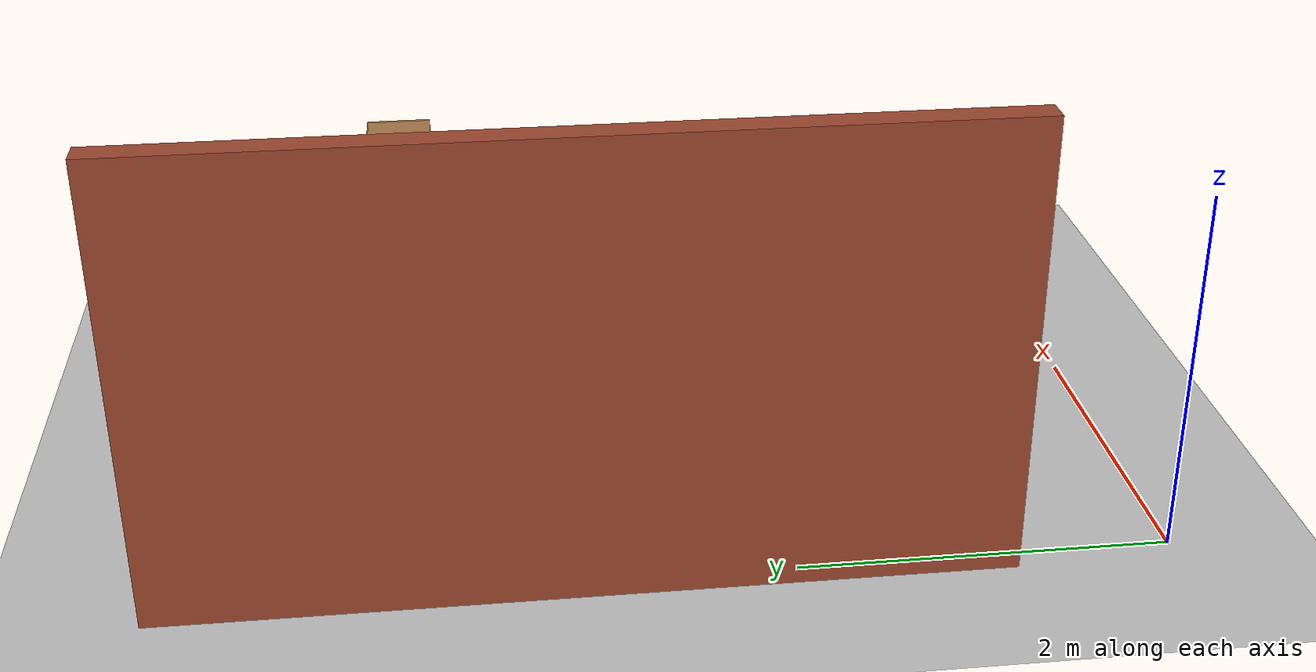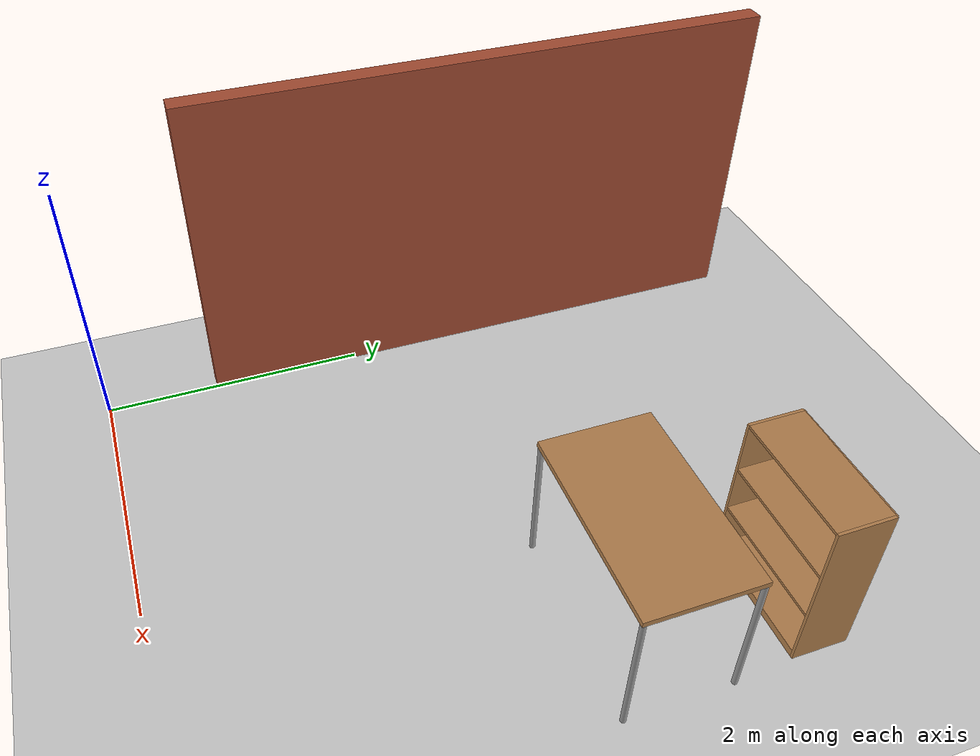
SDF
<sdf version="1.4">
 <world name="default">
  <include><uri>model://sun</uri></include>
  <include><uri>model://ground_plane</uri></include>
  <physics type="ode">
   <real_time_update_rate>1000.0</real_time_update_rate>
   <max_step_size>0.001</max_step_size>
   <real_time_factor>1</real_time_factor>
   <ode>
    <solver>
     <type>quick</type>
     <iters>150</iters>
     <precon_iters>0</precon_iters>
     <sor>1.400000</sor>
     <use_dynamic_moi_rescaling>1</use_dynamic_moi_rescaling>
    </solver>
    <constraints>
     <cfm>0.00001</cfm>
     <erp>0.2</erp>
     <contact_max_correcting_vel>2000.000000</contact_max_correcting_vel>
     <contact_surface_layer>0.01000</contact_surface_layer>
    </constraints>
   </ode>
  </physics>
  <include><uri>model://tinyroom</uri></include>
  <scene><ambient>0.4 0.4 0.4 1</ambient><background>0.7 0.7 0.7 1</background><shadows>true</shadows></scene>
 </world>
</sdf>

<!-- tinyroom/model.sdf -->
<sdf version="1.6">
  <model name="tinyroom">
    <link name="Wall_101">
      <pose frame="">-0.05 3.1 0 0 0 -1.5708</pose>
      <self_collide>0</self_collide>
      <kinematic>0</kinematic>
      <visual name="Wall_101_Visual">
        <pose frame="">0 0 1.25 0 -0 0</pose>
        <geometry>
          <box>
            <size>4.5 0.15 2.5</size>
          </box>
        </geometry>
        <material>
          <script>
            <uri>file://media/materials/scripts/gazebo.material</uri>
            <name>Gazebo/Bricks</name>
          </script>
          <ambient>1 1 1 1</ambient>
          <diffuse>1 1 1 1</diffuse>
          <specular>0.2 0.2 0.2 1</specular>
          <emissive>0 0 0 1</emissive>
        </material>
        <cast_shadows>1</cast_shadows>
        <transparency>0</transparency>
      </visual>
      <collision name="Wall_101_Collision">
        <laser_retro>0</laser_retro>
        <max_contacts>10</max_contacts>
        <pose frame="">0 0 1.25 0 -0 0</pose>
        <geometry>
          <box>
            <size>4.5 0.15 2.5</size>
          </box>
        </geometry>
        <surface>
          <friction>
            <ode>
              <mu>1</mu>
              <mu2>1</mu2>
              <fdir1>0 0 0</fdir1>
              <slip1>0</slip1>
              <slip2>0</slip2>
            </ode>
            <torsional>
              <coefficient>1</coefficient>
              <patch_radius>0</patch_radius>
              <surface_radius>0</surface_radius>
              <use_patch_radius>1</use_patch_radius>
              <ode>
                <slip>0</slip>
              </ode>
            </torsional>
          </friction>
          <bounce>
            <restitution_coefficient>0</restitution_coefficient>
            <threshold>1e+06</threshold>
          </bounce>
          <contact>
            <collide_without_contact>0</collide_without_contact>
            <collide_without_contact_bitmask>1</collide_without_contact_bitmask>
            <collide_bitmask>1</collide_bitmask>
            <ode>
              <soft_cfm>0</soft_cfm>
              <soft_erp>0.2</soft_erp>
              <kp>1e+13</kp>
              <kd>1</kd>
              <max_vel>0.01</max_vel>
              <min_depth>0</min_depth>
            </ode>
            <bullet>
              <split_impulse>1</split_impulse>
              <split_impulse_penetration_threshold>-0.01</split_impulse_penetration_threshold>
              <soft_cfm>0</soft_cfm>
              <soft_erp>0.2</soft_erp>
              <kp>1e+13</kp>
              <kd>1</kd>
            </bullet>
          </contact>
        </surface>
      </collision>
    </link>
    <model name="bookshelf">
      <static>1</static>
      <link name="link">
        <inertial>
          <mass>1</mass>
        </inertial>
        <collision name="back">
          <pose frame="">0 0.005 0.6 0 -0 0</pose>
          <geometry>
            <box>
              <size>0.9 0.01 1.2</size>
            </box>
          </geometry>
        </collision>
        <visual name="visual1">
          <pose frame="">0 0.005 0.6 0 -0 0</pose>
          <geometry>
            <box>
              <size>0.9 0.01 1.2</size>
            </box>
          </geometry>
          <material>
            <script>
              <uri>file://media/materials/scripts/gazebo.material</uri>
              <name>Gazebo/Wood</name>
            </script>
          </material>
        </visual>
        <collision name="left_side">
          <pose frame="">0.45 -0.195 0.6 0 -0 0</pose>
          <geometry>
            <box>
              <size>0.02 0.4 1.2</size>
            </box>
          </geometry>
        </collision>
        <visual name="visual2">
          <pose frame="">0.45 -0.195 0.6 0 -0 0</pose>
          <geometry>
            <box>
              <size>0.02 0.4 1.2</size>
            </box>
          </geometry>
          <material>
            <script>
              <uri>file://media/materials/scripts/gazebo.material</uri>
              <name>Gazebo/Wood</name>
            </script>
          </material>
        </visual>
        <collision name="right_side">
          <pose frame="">-0.45 -0.195 0.6 0 -0 0</pose>
          <geometry>
            <box>
              <size>0.02 0.4 1.2</size>
            </box>
          </geometry>
        </collision>
        <visual name="visual3">
          <pose frame="">-0.45 -0.195 0.6 0 -0 0</pose>
          <geometry>
            <box>
              <size>0.02 0.4 1.2</size>
            </box>
          </geometry>
          <material>
            <script>
              <uri>file://media/materials/scripts/gazebo.material</uri>
              <name>Gazebo/Wood</name>
            </script>
          </material>
        </visual>
        <collision name="bottom">
          <pose frame="">0 -0.195 0.03 0 -0 0</pose>
          <geometry>
            <box>
              <size>0.88 0.4 0.06</size>
            </box>
          </geometry>
        </collision>
        <visual name="visual4">
          <pose frame="">0 -0.195 0.03 0 -0 0</pose>
          <geometry>
            <box>
              <size>0.88 0.4 0.06</size>
            </box>
          </geometry>
          <material>
            <script>
              <uri>file://media/materials/scripts/gazebo.material</uri>
              <name>Gazebo/Wood</name>
            </script>
          </material>
        </visual>
        <collision name="top">
          <pose frame="">0 -0.195 1.19 0 -0 0</pose>
          <geometry>
            <box>
              <size>0.88 0.4 0.02</size>
            </box>
          </geometry>
        </collision>
        <visual name="visual5">
          <pose frame="">0 -0.195 1.19 0 -0 0</pose>
          <geometry>
            <box>
              <size>0.88 0.4 0.02</size>
            </box>
          </geometry>
          <material>
            <script>
              <uri>file://media/materials/scripts/gazebo.material</uri>
              <name>Gazebo/Wood</name>
            </script>
          </material>
        </visual>
        <collision name="low_shelf">
          <pose frame="">0 -0.195 0.43 0 -0 0</pose>
          <geometry>
            <box>
              <size>0.88 0.4 0.02</size>
            </box>
          </geometry>
        </collision>
        <visual name="visual6">
          <pose frame="">0 -0.195 0.43 0 -0 0</pose>
          <geometry>
            <box>
              <size>0.88 0.4 0.02</size>
            </box>
          </geometry>
          <material>
            <script>
              <uri>file://media/materials/scripts/gazebo.material</uri>
              <name>Gazebo/Wood</name>
            </script>
          </material>
        </visual>
        <collision name="high_shelf">
          <pose frame="">0 -0.195 0.8 0 -0 0</pose>
          <geometry>
            <box>
              <size>0.88 0.4 0.02</size>
            </box>
          </geometry>
        </collision>
        <visual name="visual7">
          <pose frame="">0 -0.195 0.8 0 -0 0</pose>
          <geometry>
            <box>
              <size>0.88 0.4 0.02</size>
            </box>
          </geometry>
          <material>
            <script>
              <uri>file://media/materials/scripts/gazebo.material</uri>
              <name>Gazebo/Wood</name>
            </script>
          </material>
        </visual>
      </link>
      <pose frame="">3.2 4.2 -0 0 -0 0</pose>
    </model>
    <model name="table">
      <static>0</static>
      <link name="link">
        <collision name="surface">
          <pose frame="">0 0 1 0 -0 0</pose>
          <geometry>
            <box>
              <size>1.5 0.8 0.03</size>
            </box>
          </geometry>
          <surface>
            <friction>
              <ode>
                <mu>0.6</mu>
                <mu2>0.6</mu2>
              </ode>
            </friction>
          </surface>
        </collision>
        <visual name="visual1">
          <pose frame="">0 0 1 0 -0 0</pose>
          <geometry>
            <box>
              <size>1.4 0.8 0.04</size>
            </box>
          </geometry>
          <material>
            <script>
              <uri>file://media/materials/scripts/gazebo.material</uri>
              <name>Gazebo/Wood</name>
            </script>
          </material>
        </visual>
        <collision name="front_left_leg">
          <pose frame="">0.68 0.38 0.5 0 -0 0</pose>
          <geometry>
            <cylinder>
              <radius>0.02</radius>
              <length>1</length>
            </cylinder>
          </geometry>
        </collision>
        <visual name="front_left_leg">
          <pose frame="">0.68 0.38 0.5 0 -0 0</pose>
          <geometry>
            <cylinder>
              <radius>0.02</radius>
              <length>1</length>
            </cylinder>
          </geometry>
          <material>
            <script>
              <uri>file://media/materials/scripts/gazebo.material</uri>
              <name>Gazebo/Grey</name>
            </script>
          </material>
        </visual>
        <collision name="front_right_leg">
          <pose frame="">0.68 -0.38 0.5 0 -0 0</pose>
          <geometry>
            <cylinder>
              <radius>0.02</radius>
              <length>1</length>
            </cylinder>
          </geometry>
        </collision>
        <visual name="front_right_leg">
          <pose frame="">0.68 -0.38 0.5 0 -0 0</pose>
          <geometry>
            <cylinder>
              <radius>0.02</radius>
              <length>1</length>
            </cylinder>
          </geometry>
          <material>
            <script>
              <uri>file://media/materials/scripts/gazebo.material</uri>
              <name>Gazebo/Grey</name>
            </script>
          </material>
        </visual>
        <collision name="back_right_leg">
          <pose frame="">-0.68 -0.38 0.5 0 -0 0</pose>
          <geometry>
            <cylinder>
              <radius>0.02</radius>
              <length>1</length>
            </cylinder>
          </geometry>
        </collision>
        <visual name="back_right_leg">
          <pose frame="">-0.68 -0.38 0.5 0 -0 0</pose>
          <geometry>
            <cylinder>
              <radius>0.02</radius>
              <length>1</length>
            </cylinder>
          </geometry>
          <material>
            <script>
              <uri>file://media/materials/scripts/gazebo.material</uri>
              <name>Gazebo/Grey</name>
            </script>
          </material>
        </visual>
        <collision name="back_left_leg">
          <pose frame="">-0.68 0.38 0.5 0 -0 0</pose>
          <geometry>
            <cylinder>
              <radius>0.02</radius>
              <length>1</length>
            </cylinder>
          </geometry>
        </collision>
        <visual name="back_left_leg">
          <pose frame="">-0.68 0.38 0.5 0 -0 0</pose>
          <geometry>
            <cylinder>
              <radius>0.02</radius>
              <length>1</length>
            </cylinder>
          </geometry>
          <material>
            <script>
              <uri>file://media/materials/scripts/gazebo.material</uri>
              <name>Gazebo/Grey</name>
            </script>
          </material>
        </visual>
      </link>
      <pose frame="">3 3 0 0 -0 0</pose>
    </model>
    <static>1</static>
    <allow_auto_disable>1</allow_auto_disable>
  </model>
</sdf>
